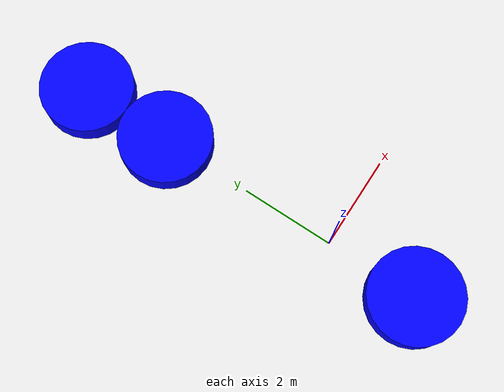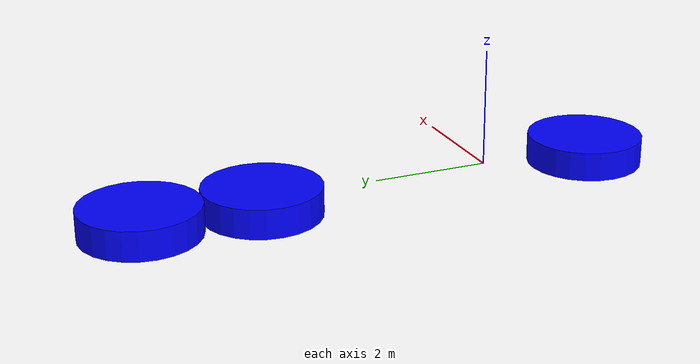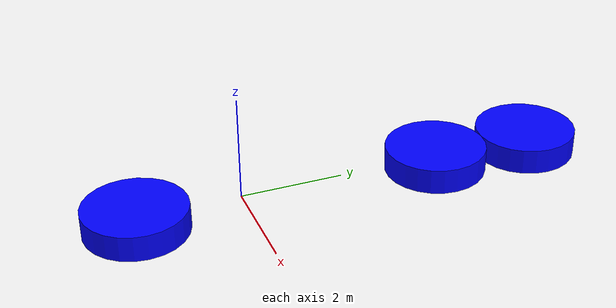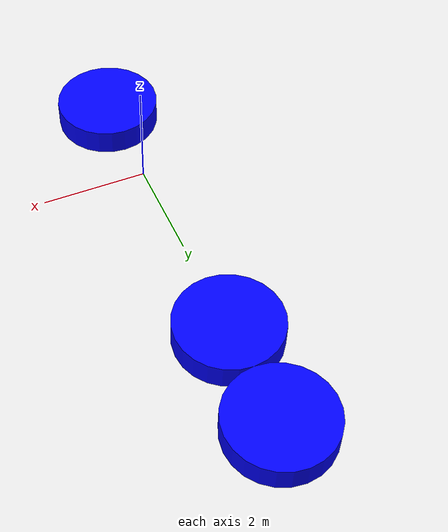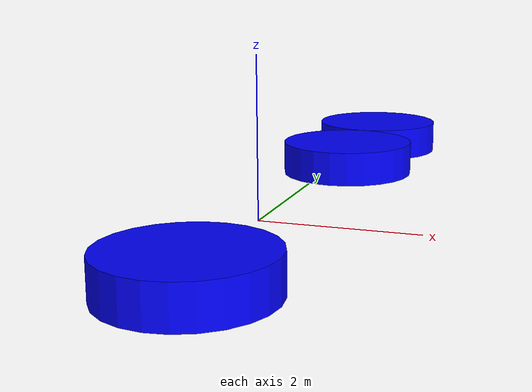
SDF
<?xml version="1.0" ?>
<sdf version="1.10">
    <world name="mbari_wec_world">

        <spherical_coordinates>
          <surface_model>EARTH_WGS84</surface_model>
          <world_frame_orientation>ENU</world_frame_orientation>
          <latitude_deg>36.743850</latitude_deg>
          <longitude_deg>-121.876233</longitude_deg>
          <elevation>0.0</elevation>
        </spherical_coordinates>

        <physics name="1ms" type="ignored">
            <max_step_size>.0005</max_step_size>
            <real_time_factor>1.0</real_time_factor>
        </physics>

        <light name="sun" type="directional">
            <cast_shadows>true</cast_shadows>
            <pose>0 0 10 0 0 0</pose>
            <diffuse>0.8 0.8 0.8 1</diffuse>
            <specular>0.2 0.2 0.2 1</specular>
            <attenuation>
                <range>1000</range>
                <constant>0.9</constant>
                <linear>0.01</linear>
                <quadratic>0.001</quadratic>
            </attenuation>
            <direction>-0.5 0.1 -0.9</direction>
        </light>

        <model name="Pneumatic Spring Test">
            <pose relative_to="world">0 0 0 0 0 0</pose>
            <!--the pose is relative to the world by default-->

            <!-- Create Body on the right that has a spring const specified by the dynamics of the joint -->
            <link name="Cyl_Right">
                <pose relative_to="__model__">0 -2 0 0 0 0</pose>
                <inertial>
                    <mass>100</mass>
                    <inertia>
                        <ixx>39583333333</ixx>
                        <ixy>0</ixy>
                        <ixz>0</ixz>
                        <iyy>39583333333</iyy>
                        <iyz>0</iyz>
                        <izz>12500000000</izz>
                    </inertia>
                </inertial>
                <visual name="visual">
                    <geometry>
                        <cylinder>
                            <radius>1.0</radius>
                            <length>0.5</length>
                        </cylinder>
                    </geometry>
                    <!--let's add color to our link-->
                    <material>
                        <ambient>0.0 0.0 1.0 1</ambient>
                        <diffuse>0.0 0.0 1.0 1</diffuse>
                        <specular>0.0 0.0 1.0 1</specular>
                    </material>
                </visual>
            </link>

            <joint name="joint_right" type="prismatic">
                <parent>world</parent>
                <child>Cyl_Right</child>
                <pose>0.0 0.0 -2.0 0 0 0</pose>
                <axis>
                    <limit>
                        <lower>-10000.0</lower>
                        <upper>10000.0</upper>
                    </limit>
                    <xyz>0.0 0.0 1.0</xyz>
                    <dynamics>
                        <spring_stiffness>100</spring_stiffness>
                        <spring_reference>0.0</spring_reference>
                        <damping>0.0</damping>
                        <friction>0.0</friction>
                    </dynamics>
                </axis>
            </joint>

            <!-- Create Body Using Adiabatic Pneumatic Spring Plugin" -->
            <link name="Cyl_Adiabatic">
                <pose relative_to="__model__">0 4 0 0 0 0</pose>
                <inertial>
                    <mass>48</mass>
                    <inertia>
                        <ixx>1</ixx>
                        <ixy>0</ixy>
                        <ixz>0</ixz>
                        <iyy>1</iyy>
                        <iyz>0</iyz>
                        <izz>1</izz>
                    </inertia>
                </inertial>
                <visual name="visual">
                    <geometry>
                        <cylinder>
                            <radius>1.0</radius>
                            <length>0.5</length>
                        </cylinder>
                    </geometry>
                    <!--let's add color to our link-->
                    <material>
                        <ambient>1.0 1.0 0.0 1</ambient>
                        <diffuse>0.0 0.0 1.0 1</diffuse>
                        <specular>0.0 0.0 1.0 1</specular>
                    </material>
                </visual>
            </link>

            <joint name="joint_adiabatic" type="prismatic">
                <parent>world</parent>
                <child>Cyl_Adiabatic</child>
                <pose>0.0 0.0 -2.0 0 0 0</pose>
                <axis>
                    <limit>
                        <lower>0.0</lower>
                        <upper>2.03</upper>
                    </limit>
                    <xyz>0.0 0.0 1.0</xyz>
                </axis>
            </joint>

            <!-- Add Upper/Lower Adiabatic Spring plugin -->
            <plugin filename="PolytropicPneumaticSpring" name="buoy_gazebo::PolytropicPneumaticSpring">
                <JointName>joint_adiabatic</JointName>
                <chamber>upper_adiabatic</chamber>
                <n>1.4</n>
                <stroke>2.03</stroke>
                <x0>0.9921</x0>
                <piston_area>0.0127</piston_area>
                <dead_volume>0.0266</dead_volume>
                <P0>410240</P0>
                <T0>283.15</T0>
                <R_specific>0.2968</R_specific>
                <c_p>1.04</c_p>
            </plugin>

            <plugin filename="PolytropicPneumaticSpring" name="buoy_gazebo::PolytropicPneumaticSpring">
                <JointName>joint_adiabatic</JointName>
                <chamber>lower_adiabatic</chamber>
                <n>1.4</n>
                <stroke>2.03</stroke>
                <x0>1.0379</x0>
                <piston_area>0.0115</piston_area>
                <dead_volume>0.0523</dead_volume>
                <P0>1212100</P0>
                <T0>283.15</T0>
                <R_specific>0.2968</R_specific>
                <c_p>1.04</c_p>
            </plugin>

            <!-- Create Body Using Polytropic Pneumatic Spring Plugin" -->
            <link name="Cyl_Poly">
                <pose relative_to="__model__">0 6 0 0 0 0</pose>
                <inertial>
                    <mass>48</mass>
                    <inertia>
                        <ixx>1</ixx>
                        <ixy>0</ixy>
                        <ixz>0</ixz>
                        <iyy>1</iyy>
                        <iyz>0</iyz>
                        <izz>1</izz>
                    </inertia>
                </inertial>
                <visual name="visual">
                    <geometry>
                        <cylinder>
                            <radius>1.0</radius>
                            <length>0.5</length>
                        </cylinder>
                    </geometry>
                    <!--let's add color to our link-->
                    <material>
                        <ambient>1.0 1.0 0.0 1</ambient>
                        <diffuse>0.0 0.0 1.0 1</diffuse>
                        <specular>0.0 0.0 1.0 1</specular>
                    </material>
                </visual>
            </link>

            <joint name="joint_poly" type="prismatic">
                <parent>world</parent>
                <child>Cyl_Poly</child>
                <pose>0.0 0.0 -2.0 0 0 0</pose>
                <axis>
                    <limit>
                        <lower>0.0</lower>
                        <upper>2.03</upper>
                    </limit>
                    <xyz>0.0 0.0 1.0</xyz>
                </axis>
            </joint>

            <!-- Add Upper/Lower Polytropic Spring plugin -->
            <plugin filename="PolytropicPneumaticSpring" name="buoy_gazebo::PolytropicPneumaticSpring">
                <JointName>joint_poly</JointName>
                <chamber>upper_polytropic</chamber>
                <stroke>2.03</stroke>
                <piston_area>0.0127</piston_area>
                <dead_volume>0.0266</dead_volume>
                <T0>283.15</T0>
                <R_specific>0.2968</R_specific>
                <c_p>1.04</c_p>
                <hysteresis>true</hysteresis>
                <n1>1.2371</n1>
                <n2>1.2307</n2>
                <x1>0.9790</x1>
                <x2>1.1912</x2>
                <P1>410291</P1>
                <P2>410266</P2>
            </plugin>

            <plugin filename="PolytropicPneumaticSpring" name="buoy_gazebo::PolytropicPneumaticSpring">
                <JointName>joint_poly</JointName>
                <chamber>lower_polytropic</chamber>
                <stroke>2.03</stroke>
                <piston_area>0.0115</piston_area>
                <dead_volume>0.0523</dead_volume>
                <T0>283.15</T0>
                <R_specific>0.2968</R_specific>
                <c_p>1.04</c_p>
                <hysteresis>true</hysteresis>
                <n1>1.2327</n1>
                <n2>1.2518</n2>
                <x1>1.1958</x1>
                <x2>1.3935</x2>
                <P1>1212090</P1>
                <P2>1212140</P2>
            </plugin>

        </model>
    </world>
</sdf>
